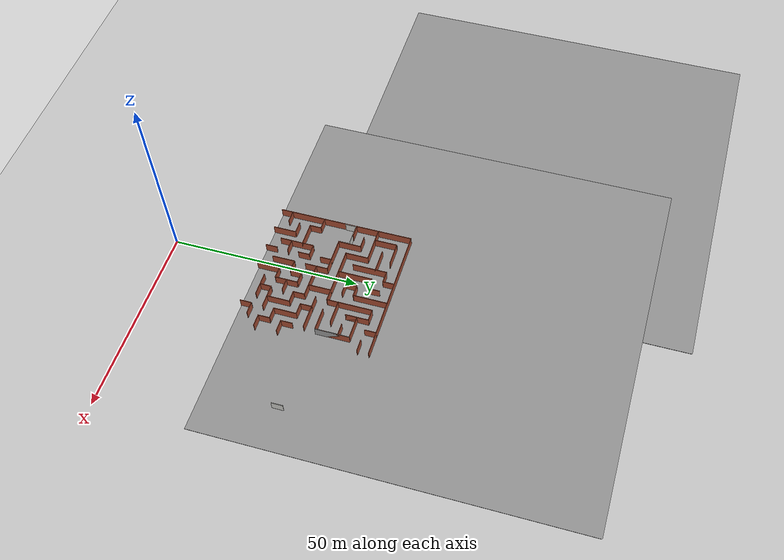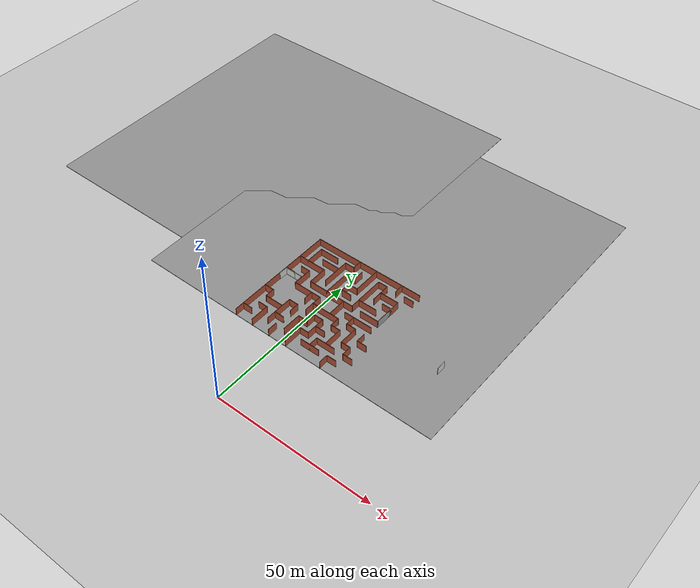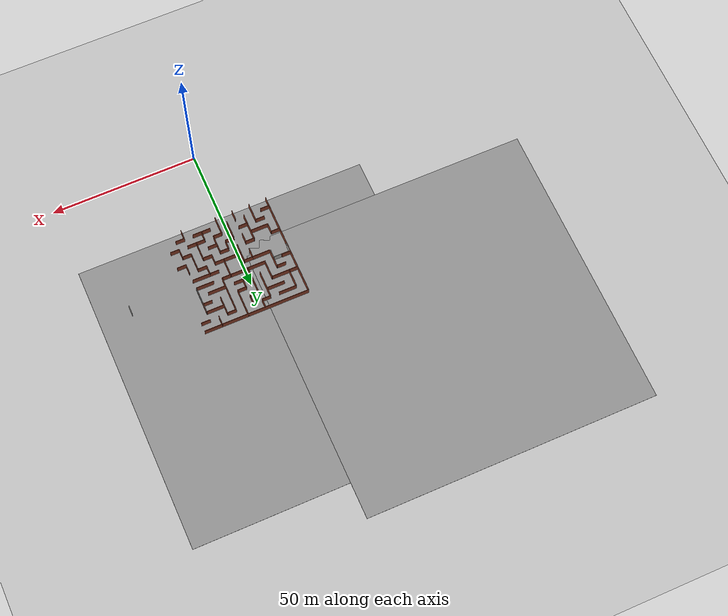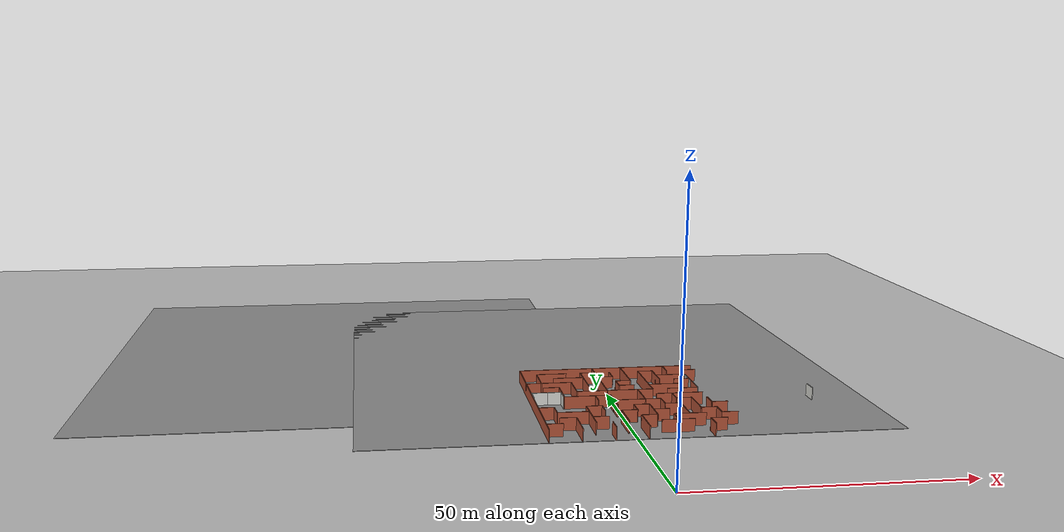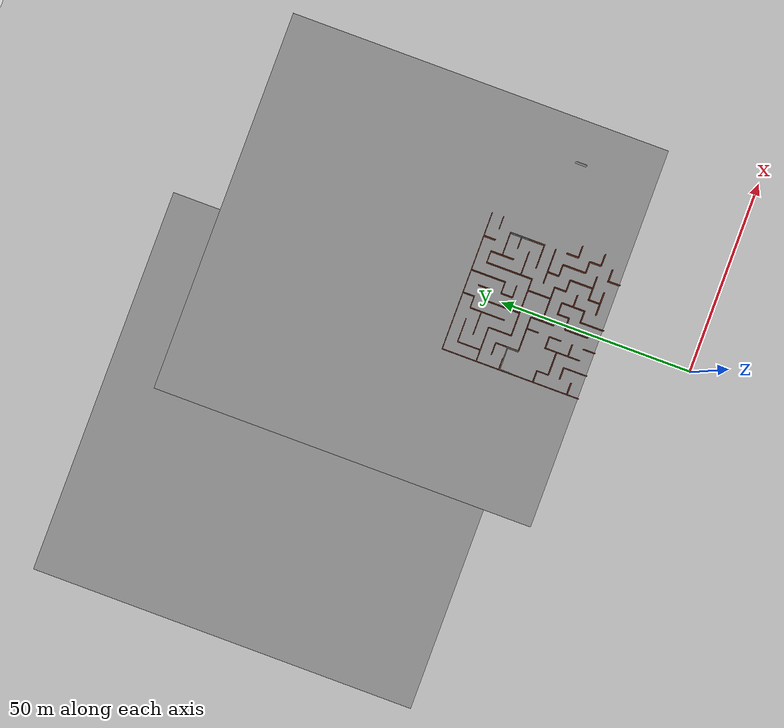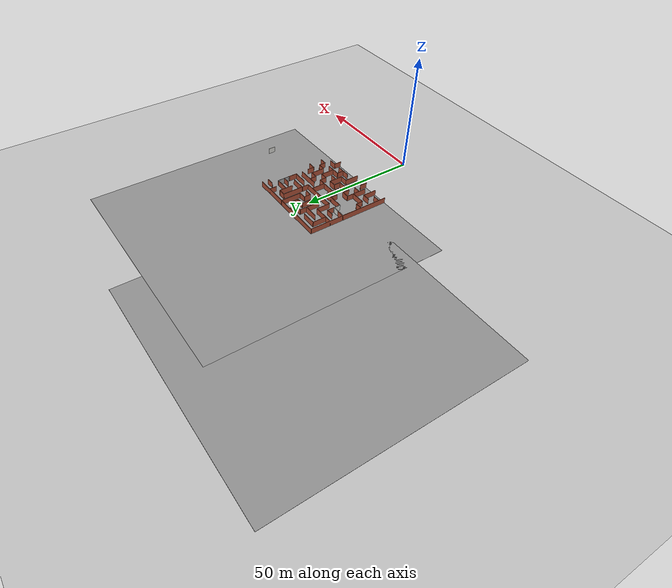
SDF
<sdf version="1.6">
 <world name="default">
  <model name="ground_plane">
   <static>1</static>
   <link name="link">
    <collision name="collision">
     <geometry><plane><normal>0 0 1</normal><size>100 100</size></plane></geometry>
     <surface><friction><ode><mu>100</mu><mu2>50</mu2></ode></friction></surface>
    </collision>
    <visual name="visual">
     <cast_shadows>0</cast_shadows>
     <geometry><plane><normal>0 0 1</normal><size>100 100</size></plane></geometry>
     <material>
      <script><uri>file://media/materials/scripts/gazebo.material</uri><name>Gazebo/Grey</name></script>
     </material>
    </visual>
   </link>
  </model>
  <model name="ground_plane_0">
   <static>1</static>
   <link name="link">
    <collision name="collision">
     <geometry><plane><normal>0 0 1</normal><size>100 100</size></plane></geometry>
     <surface><friction><ode><mu>100</mu><mu2>50</mu2></ode></friction></surface>
    </collision>
    <visual name="visual">
     <cast_shadows>0</cast_shadows>
     <geometry><plane><normal>0 0 1</normal><size>100 100</size></plane></geometry>
     <material>
      <script><uri>file://media/materials/scripts/gazebo.material</uri><name>Gazebo/Grey</name></script>
     </material>
    </visual>
   </link>
   <pose>0 74 0 0 -0 0</pose>
  </model>
  <model name="ground_plane_4">
   <static>1</static>
   <link name="link">
    <collision name="collision">
     <geometry><plane><normal>0 0 1</normal><size>100 100</size></plane></geometry>
     <surface><friction><ode><mu>100</mu><mu2>50</mu2></ode></friction></surface>
    </collision>
    <visual name="visual">
     <cast_shadows>0</cast_shadows>
     <geometry><plane><normal>0 0 1</normal><size>100 100</size></plane></geometry>
     <material>
      <script><uri>file://media/materials/scripts/gazebo.material</uri><name>Gazebo/Grey</name></script>
     </material>
    </visual>
   </link>
   <pose>-52.5239 86.437 0 0 -0 0</pose>
  </model>
  <model name="maze_final_2_0_clone">
   <pose>2 42 0 0 -0 1.57079</pose>
   <link name="Wall_10">
    <collision name="Wall_10_Collision">
     <geometry><box><size>3.15 0.15 2.5</size></box></geometry>
     <pose>0 0 1.25 0 -0 0</pose>
    </collision>
    <visual name="Wall_10_Visual">
     <pose>0 0 1.25 0 -0 0</pose>
     <geometry><box><size>3.15 0.15 2.5</size></box></geometry>
     <material>
      <script><uri>file://media/materials/scripts/gazebo.material</uri><name>Gazebo/Bricks</name></script>
      <ambient>1 1 1 1</ambient>
     </material>
    </visual>
    <pose>-16.5 -12 0 0 -0 0</pose>
   </link>
   <link name="Wall_102">
    <collision name="Wall_102_Collision">
     <geometry><box><size>9.15 0.15 2.5</size></box></geometry>
     <pose>0 0 1.25 0 -0 0</pose>
    </collision>
    <visual name="Wall_102_Visual">
     <pose>0 0 1.25 0 -0 0</pose>
     <geometry><box><size>9.15 0.15 2.5</size></box></geometry>
     <material>
      <script><uri>file://media/materials/scripts/gazebo.material</uri><name>Gazebo/Bricks</name></script>
      <ambient>1 1 1 1</ambient>
     </material>
    </visual>
    <pose>-0.0065 7.5 0 0 0 -1.57224</pose>
   </link>
   <link name="Wall_103">
    <collision name="Wall_103_Collision">
     <geometry><box><size>6.137 0.15 2.5</size></box></geometry>
     <pose>0 0 1.25 0 -0 0</pose>
    </collision>
    <visual name="Wall_103_Visual">
     <pose>0 0 1.25 0 -0 0</pose>
     <geometry><box><size>6.137 0.15 2.5</size></box></geometry>
     <material>
      <script><uri>file://media/materials/scripts/gazebo.material</uri><name>Gazebo/Bricks</name></script>
      <ambient>1 1 1 1</ambient>
     </material>
    </visual>
    <pose>-3.0065 3 0 0 -0 3.14159</pose>
   </link>
   <link name="Wall_105">
    <collision name="Wall_105_Collision">
     <geometry><box><size>3.15 0.15 2.5</size></box></geometry>
     <pose>0 0 1.25 0 -0 0</pose>
    </collision>
    <visual name="Wall_105_Visual">
     <pose>0 0 1.25 0 -0 0</pose>
     <geometry><box><size>3.15 0.15 2.5</size></box></geometry>
     <material>
      <script><uri>file://media/materials/scripts/gazebo.material</uri><name>Gazebo/Bricks</name></script>
      <ambient>1 1 1 1</ambient>
     </material>
    </visual>
    <pose>-1.5 6 0 0 -0 3.14159</pose>
   </link>
   <link name="Wall_108">
    <collision name="Wall_108_Collision">
     <geometry><box><size>6.15 0.15 2.5</size></box></geometry>
     <pose>0 0 1.25 0 -0 0</pose>
    </collision>
    <visual name="Wall_108_Visual">
     <pose>0 0 1.25 0 -0 0</pose>
     <geometry><box><size>6.15 0.15 2.5</size></box></geometry>
     <material>
      <script><uri>file://media/materials/scripts/gazebo.material</uri><name>Gazebo/Bricks</name></script>
      <ambient>1 1 1 1</ambient>
     </material>
    </visual>
    <pose>1e-06 -3 0 0 -0 3.14159</pose>
   </link>
   <link name="Wall_110">
    <collision name="Wall_110_Collision">
     <geometry><box><size>9.15 0.15 2.5</size></box></geometry>
     <pose>0 0 1.25 0 -0 0</pose>
    </collision>
    <visual name="Wall_110_Visual">
     <pose>0 0 1.25 0 -0 0</pose>
     <geometry><box><size>9.15 0.15 2.5</size></box></geometry>
     <material>
      <script><uri>file://media/materials/scripts/gazebo.material</uri><name>Gazebo/Bricks</name></script>
      <ambient>1 1 1 1</ambient>
     </material>
    </visual>
    <pose>-3 -1.5 0 0 -0 1.5708</pose>
   </link>
   <link name="Wall_112">
    <collision name="Wall_112_Collision">
     <geometry><box><size>3.15 0.15 2.5</size></box></geometry>
     <pose>0 0 1.25 0 -0 0</pose>
    </collision>
    <visual name="Wall_112_Visual">
     <pose>0 0 1.25 0 -0 0</pose>
     <geometry><box><size>3.15 0.15 2.5</size></box></geometry>
     <material>
      <script><uri>file://media/materials/scripts/gazebo.material</uri><name>Gazebo/Bricks</name></script>
      <ambient>1 1 1 1</ambient>
     </material>
    </visual>
    <pose>-4.5 -6 0 0 -0 3.14159</pose>
   </link>
   <link name="Wall_113">
    <collision name="Wall_113_Collision">
     <geometry><box><size>3.15 0.15 2.5</size></box></geometry>
     <pose>0 0 1.25 0 -0 0</pose>
    </collision>
    <visual name="Wall_113_Visual">
     <pose>0 0 1.25 0 -0 0</pose>
     <geometry><box><size>3.15 0.15 2.5</size></box></geometry>
     <material>
      <script><uri>file://media/materials/scripts/gazebo.material</uri><name>Gazebo/Bricks</name></script>
      <ambient>1 1 1 1</ambient>
     </material>
    </visual>
    <pose>-6 -7.5 0 0 0 -1.5708</pose>
   </link>
   <link name="Wall_114">
    <collision name="Wall_114_Collision">
     <geometry><box><size>6.15 0.15 2.5</size></box></geometry>
     <pose>0 0 1.25 0 -0 0</pose>
    </collision>
    <visual name="Wall_114_Visual">
     <pose>0 0 1.25 0 -0 0</pose>
     <geometry><box><size>6.15 0.15 2.5</size></box></geometry>
     <material>
      <script><uri>file://media/materials/scripts/gazebo.material</uri><name>Gazebo/Bricks</name></script>
      <ambient>1 1 1 1</ambient>
     </material>
    </visual>
    <pose>-9 -9 0 0 -0 3.14159</pose>
   </link>
   <link name="Wall_116">
    <collision name="Wall_116_Collision">
     <geometry><box><size>6.15 0.15 2.5</size></box></geometry>
     <pose>0 0 1.25 0 -0 0</pose>
    </collision>
    <visual name="Wall_116_Visual">
     <pose>0 0 1.25 0 -0 0</pose>
     <geometry><box><size>6.15 0.15 2.5</size></box></geometry>
     <material>
      <script><uri>file://media/materials/scripts/gazebo.material</uri><name>Gazebo/Bricks</name></script>
      <ambient>1 1 1 1</ambient>
     </material>
    </visual>
    <pose>-12 -9 0 0 -0 1.5708</pose>
   </link>
   <link name="Wall_117">
    <collision name="Wall_117_Collision">
     <geometry><box><size>3.15 0.15 2.5</size></box></geometry>
     <pose>0 0 1.25 0 -0 0</pose>
    </collision>
    <visual name="Wall_117_Visual">
     <pose>0 0 1.25 0 -0 0</pose>
     <geometry><box><size>3.15 0.15 2.5</size></box></geometry>
     <material>
      <script><uri>file://media/materials/scripts/gazebo.material</uri><name>Gazebo/Bricks</name></script>
      <ambient>1 1 1 1</ambient>
     </material>
    </visual>
    <pose>-13.5 -6 0 0 -0 3.14159</pose>
   </link>
   <link name="Wall_119">
    <collision name="Wall_119_Collision">
     <geometry><box><size>6.15 0.15 2.5</size></box></geometry>
     <pose>0 0 1.25 0 -0 0</pose>
    </collision>
    <visual name="Wall_119_Visual">
     <pose>0 0 1.25 0 -0 0</pose>
     <geometry><box><size>6.15 0.15 2.5</size></box></geometry>
     <material>
      <script><uri>file://media/materials/scripts/gazebo.material</uri><name>Gazebo/Bricks</name></script>
      <ambient>1 1 1 1</ambient>
     </material>
    </visual>
    <pose>-15 -6 0 0 0 -1.5708</pose>
   </link>
   <link name="Wall_12">
    <collision name="Wall_12_Collision">
     <geometry><box><size>6.15 0.15 2.5</size></box></geometry>
     <pose>0 0 1.25 0 -0 0</pose>
    </collision>
    <visual name="Wall_12_Visual">
     <pose>0 0 1.25 0 -0 0</pose>
     <geometry><box><size>6.15 0.15 2.5</size></box></geometry>
     <material>
      <script><uri>file://media/materials/scripts/gazebo.material</uri><name>Gazebo/Bricks</name></script>
      <ambient>1 1 1 1</ambient>
     </material>
    </visual>
    <pose>-15 -1e-06 0 0 -0 0</pose>
   </link>
   <link name="Wall_121">
    <collision name="Wall_121_Collision">
     <geometry><box><size>3.13703 0.15 2.5</size></box></geometry>
     <pose>0 0 1.25 0 -0 0</pose>
    </collision>
    <visual name="Wall_121_Visual">
     <pose>0 0 1.25 0 -0 0</pose>
     <geometry><box><size>3.13703 0.15 2.5</size></box></geometry>
     <material>
      <script><uri>file://media/materials/scripts/gazebo.material</uri><name>Gazebo/Bricks</name></script>
      <ambient>1 1 1 1</ambient>
     </material>
    </visual>
    <pose>-12.0065 -1.4935 0 0 0 -1.57515</pose>
   </link>
   <link name="Wall_122">
    <collision name="Wall_122_Collision">
     <geometry><box><size>6.16301 0.15 2.5</size></box></geometry>
     <pose>0 0 1.25 0 -0 0</pose>
    </collision>
    <visual name="Wall_122_Visual">
     <pose>0 0 1.25 0 -0 0</pose>
     <geometry><box><size>6.16301 0.15 2.5</size></box></geometry>
     <material>
      <script><uri>file://media/materials/scripts/gazebo.material</uri><name>Gazebo/Bricks</name></script>
      <ambient>1 1 1 1</ambient>
     </material>
    </visual>
    <pose>-9.0065 -2.9935 0 0 0 -0.002162</pose>
   </link>
   <link name="Wall_123">
    <collision name="Wall_123_Collision">
     <geometry><box><size>3.15 0.15 2.5</size></box></geometry>
     <pose>0 0 1.25 0 -0 0</pose>
    </collision>
    <visual name="Wall_123_Visual">
     <pose>0 0 1.25 0 -0 0</pose>
     <geometry><box><size>3.15 0.15 2.5</size></box></geometry>
     <material>
      <script><uri>file://media/materials/scripts/gazebo.material</uri><name>Gazebo/Bricks</name></script>
      <ambient>1 1 1 1</ambient>
     </material>
    </visual>
    <pose>-6 -1.5 0 0 -0 1.5708</pose>
   </link>
   <link name="Wall_124">
    <collision name="Wall_124_Collision">
     <geometry><box><size>3.15 0.15 2.5</size></box></geometry>
     <pose>0 0 1.25 0 -0 0</pose>
    </collision>
    <visual name="Wall_124_Visual">
     <pose>0 0 1.25 0 -0 0</pose>
     <geometry><box><size>3.15 0.15 2.5</size></box></geometry>
     <material>
      <script><uri>file://media/materials/scripts/gazebo.material</uri><name>Gazebo/Bricks</name></script>
      <ambient>1 1 1 1</ambient>
     </material>
    </visual>
    <pose>-7.5 -1e-06 0 0 -0 3.14159</pose>
   </link>
   <link name="Wall_125">
    <collision name="Wall_125_Collision">
     <geometry><box><size>3.15 0.15 2.5</size></box></geometry>
     <pose>0 0 1.25 0 -0 0</pose>
    </collision>
    <visual name="Wall_125_Visual">
     <pose>0 0 1.25 0 -0 0</pose>
     <geometry><box><size>3.15 0.15 2.5</size></box></geometry>
     <material>
      <script><uri>file://media/materials/scripts/gazebo.material</uri><name>Gazebo/Bricks</name></script>
      <ambient>1 1 1 1</ambient>
     </material>
    </visual>
    <pose>-9 1.5 0 0 -0 1.5708</pose>
   </link>
   <link name="Wall_127">
    <collision name="Wall_127_Collision">
     <geometry><box><size>6.15 0.15 2.5</size></box></geometry>
     <pose>0 0 1.25 0 -0 0</pose>
    </collision>
    <visual name="Wall_127_Visual">
     <pose>0 0 1.25 0 -0 0</pose>
     <geometry><box><size>6.15 0.15 2.5</size></box></geometry>
     <material>
      <script><uri>file://media/materials/scripts/gazebo.material</uri><name>Gazebo/Bricks</name></script>
      <ambient>1 1 1 1</ambient>
     </material>
    </visual>
    <pose>-12 3 0 0 -0 3.14159</pose>
   </link>
   <link name="Wall_129">
    <collision name="Wall_129_Collision">
     <geometry><box><size>3.15 0.15 2.5</size></box></geometry>
     <pose>0 0 1.25 0 -0 0</pose>
    </collision>
    <visual name="Wall_129_Visual">
     <pose>0 0 1.25 0 -0 0</pose>
     <geometry><box><size>3.15 0.15 2.5</size></box></geometry>
     <material>
      <script><uri>file://media/materials/scripts/gazebo.material</uri><name>Gazebo/Bricks</name></script>
      <ambient>1 1 1 1</ambient>
     </material>
    </visual>
    <pose>-9 -4.5 0 0 0 -1.5708</pose>
   </link>
   <link name="Wall_131">
    <collision name="Wall_131_Collision">
     <geometry><box><size>3.15 0.15 2.5</size></box></geometry>
     <pose>0 0 1.25 0 -0 0</pose>
    </collision>
    <visual name="Wall_131_Visual">
     <pose>0 0 1.25 0 -0 0</pose>
     <geometry><box><size>3.15 0.15 2.5</size></box></geometry>
     <material>
      <script><uri>file://media/materials/scripts/gazebo.material</uri><name>Gazebo/Bricks</name></script>
      <ambient>1 1 1 1</ambient>
     </material>
    </visual>
    <pose>-6 16.5 0 0 0 -1.5708</pose>
   </link>
   <link name="Wall_132">
    <collision name="Wall_132_Collision">
     <geometry><box><size>3.15 0.15 2.5</size></box></geometry>
     <pose>0 0 1.25 0 -0 0</pose>
    </collision>
    <visual name="Wall_132_Visual">
     <pose>0 0 1.25 0 -0 0</pose>
     <geometry><box><size>3.15 0.15 2.5</size></box></geometry>
     <material>
      <script><uri>file://media/materials/scripts/gazebo.material</uri><name>Gazebo/Bricks</name></script>
      <ambient>1 1 1 1</ambient>
     </material>
    </visual>
    <pose>-7.5 15 0 0 -0 3.14159</pose>
   </link>
   <link name="Wall_133">
    <collision name="Wall_133_Collision">
     <geometry><box><size>6.15 0.15 2.5</size></box></geometry>
     <pose>0 0 1.25 0 -0 0</pose>
    </collision>
    <visual name="Wall_133_Visual">
     <pose>0 0 1.25 0 -0 0</pose>
     <geometry><box><size>6.15 0.15 2.5</size></box></geometry>
     <material>
      <script><uri>file://media/materials/scripts/gazebo.material</uri><name>Gazebo/Bricks</name></script>
      <ambient>1 1 1 1</ambient>
     </material>
    </visual>
    <pose>-9 12 0 0 0 -1.5708</pose>
   </link>
   <link name="Wall_135">
    <collision name="Wall_135_Collision">
     <geometry><box><size>3.15 0.15 2.5</size></box></geometry>
     <pose>0 0 1.25 0 -0 0</pose>
    </collision>
    <visual name="Wall_135_Visual">
     <pose>0 0 1.25 0 -0 0</pose>
     <geometry><box><size>3.15 0.15 2.5</size></box></geometry>
     <material>
      <script><uri>file://media/materials/scripts/gazebo.material</uri><name>Gazebo/Bricks</name></script>
      <ambient>1 1 1 1</ambient>
     </material>
    </visual>
    <pose>-7.5 6 0 0 -0 0</pose>
   </link>
   <link name="Wall_136">
    <collision name="Wall_136_Collision">
     <geometry><box><size>3.15 0.15 2.5</size></box></geometry>
     <pose>0 0 1.25 0 -0 0</pose>
    </collision>
    <visual name="Wall_136_Visual">
     <pose>0 0 1.25 0 -0 0</pose>
     <geometry><box><size>3.15 0.15 2.5</size></box></geometry>
     <material>
      <script><uri>file://media/materials/scripts/gazebo.material</uri><name>Gazebo/Bricks</name></script>
      <ambient>1 1 1 1</ambient>
     </material>
    </visual>
    <pose>-6 7.5 0 0 -0 1.5708</pose>
   </link>
   <link name="Wall_137">
    <collision name="Wall_137_Collision">
     <geometry><box><size>9.15 0.15 2.5</size></box></geometry>
     <pose>0 0 1.25 0 -0 0</pose>
    </collision>
    <visual name="Wall_137_Visual">
     <pose>0 0 1.25 0 -0 0</pose>
     <geometry><box><size>9.15 0.15 2.5</size></box></geometry>
     <material>
      <script><uri>file://media/materials/scripts/gazebo.material</uri><name>Gazebo/Bricks</name></script>
      <ambient>1 1 1 1</ambient>
     </material>
    </visual>
    <pose>-10.5 9 0 0 -0 3.14159</pose>
   </link>
   <link name="Wall_139">
    <collision name="Wall_139_Collision">
     <geometry><box><size>3.15 0.15 2.5</size></box></geometry>
     <pose>0 0 1.25 0 -0 0</pose>
    </collision>
    <visual name="Wall_139_Visual">
     <pose>0 0 1.25 0 -0 0</pose>
     <geometry><box><size>3.15 0.15 2.5</size></box></geometry>
     <material>
      <script><uri>file://media/materials/scripts/gazebo.material</uri><name>Gazebo/Bricks</name></script>
      <ambient>1 1 1 1</ambient>
     </material>
    </visual>
    <pose>-12 7.5 0 0 0 -1.5708</pose>
   </link>
   <link name="Wall_14">
    <collision name="Wall_14_Collision">
     <geometry><box><size>3.15 0.15 2.5</size></box></geometry>
     <pose>0 0 1.25 0 -0 0</pose>
    </collision>
    <visual name="Wall_14_Visual">
     <pose>0 0 1.25 0 -0 0</pose>
     <geometry><box><size>3.15 0.15 2.5</size></box></geometry>
     <material>
      <script><uri>file://media/materials/scripts/gazebo.material</uri><name>Gazebo/Bricks</name></script>
      <ambient>1 1 1 1</ambient>
     </material>
    </visual>
    <pose>-16.5 6 0 0 -0 0</pose>
   </link>
   <link name="Wall_141">
    <collision name="Wall_141_Collision">
     <geometry><box><size>3.15 0.15 2.5</size></box></geometry>
     <pose>0 0 1.25 0 -0 0</pose>
    </collision>
    <visual name="Wall_141_Visual">
     <pose>0 0 1.25 0 -0 0</pose>
     <geometry><box><size>3.15 0.15 2.5</size></box></geometry>
     <material>
      <script><uri>file://media/materials/scripts/gazebo.material</uri><name>Gazebo/Bricks</name></script>
      <ambient>1 1 1 1</ambient>
     </material>
    </visual>
    <pose>-15 16.5 0 0 -0 1.5708</pose>
   </link>
   <link name="Wall_143">
    <collision name="Wall_143_Collision">
     <geometry><box><size>3.15 0.15 2.5</size></box></geometry>
     <pose>0 0 1.25 0 -0 0</pose>
    </collision>
    <visual name="Wall_143_Visual">
     <pose>0 0 1.25 0 -0 0</pose>
     <geometry><box><size>3.15 0.15 2.5</size></box></geometry>
     <material>
      <script><uri>file://media/materials/scripts/gazebo.material</uri><name>Gazebo/Bricks</name></script>
      <ambient>1 1 1 1</ambient>
     </material>
    </visual>
    <pose>-12 13.5 0 0 -0 1.5708</pose>
   </link>
   <link name="Wall_16">
    <collision name="Wall_16_Collision">
     <geometry><box><size>6.15 0.15 2.5</size></box></geometry>
     <pose>0 0 1.25 0 -0 0</pose>
    </collision>
    <visual name="Wall_16_Visual">
     <pose>0 0 1.25 0 -0 0</pose>
     <geometry><box><size>6.15 0.15 2.5</size></box></geometry>
     <material>
      <script><uri>file://media/materials/scripts/gazebo.material</uri><name>Gazebo/Bricks</name></script>
      <ambient>1 1 1 1</ambient>
     </material>
    </visual>
    <pose>-15 12 0 0 -0 0</pose>
   </link>
   <link name="Wall_18">
    <collision name="Wall_18_Collision">
     <geometry><box><size>3.15 0.15 2.5</size></box></geometry>
     <pose>0 0 1.25 0 -0 0</pose>
    </collision>
    <visual name="Wall_18_Visual">
     <pose>0 0 1.25 0 -0 0</pose>
     <geometry><box><size>3.15 0.15 2.5</size></box></geometry>
     <material>
      <script><uri>file://media/materials/scripts/gazebo.material</uri><name>Gazebo/Bricks</name></script>
      <ambient>1 1 1 1</ambient>
     </material>
    </visual>
    <pose>-12 -16.5 0 0 -0 1.5708</pose>
   </link>
   <link name="Wall_20">
    <collision name="Wall_20_Collision">
     <geometry><box><size>3.15 0.15 2.5</size></box></geometry>
     <pose>0 0 1.25 0 -0 0</pose>
    </collision>
    <visual name="Wall_20_Visual">
     <pose>0 0 1.25 0 -0 0</pose>
     <geometry><box><size>3.15 0.15 2.5</size></box></geometry>
     <material>
      <script><uri>file://media/materials/scripts/gazebo.material</uri><name>Gazebo/Bricks</name></script>
      <ambient>1 1 1 1</ambient>
     </material>
    </visual>
    <pose>-10.5 -15 0 0 -0 0</pose>
   </link>
   <link name="Wall_22">
    <collision name="Wall_22_Collision">
     <geometry><box><size>6.15 0.15 2.5</size></box></geometry>
     <pose>0 0 1.25 0 -0 0</pose>
    </collision>
    <visual name="Wall_22_Visual">
     <pose>0 0 1.25 0 -0 0</pose>
     <geometry><box><size>6.15 0.15 2.5</size></box></geometry>
     <material>
      <script><uri>file://media/materials/scripts/gazebo.material</uri><name>Gazebo/Bricks</name></script>
      <ambient>1 1 1 1</ambient>
     </material>
    </visual>
    <pose>-6 -12 0 0 -0 0</pose>
   </link>
   <link name="Wall_24">
    <collision name="Wall_24_Collision">
     <geometry><box><size>3.15 0.15 2.5</size></box></geometry>
     <pose>0 0 1.25 0 -0 0</pose>
    </collision>
    <visual name="Wall_24_Visual">
     <pose>0 0 1.25 0 -0 0</pose>
     <geometry><box><size>3.15 0.15 2.5</size></box></geometry>
     <material>
      <script><uri>file://media/materials/scripts/gazebo.material</uri><name>Gazebo/Bricks</name></script>
      <ambient>1 1 1 1</ambient>
     </material>
    </visual>
    <pose>-9 -13.5 0 0 0 -1.5708</pose>
   </link>
   <link name="Wall_26">
    <collision name="Wall_26_Collision">
     <geometry><box><size>3.15 0.15 2.5</size></box></geometry>
     <pose>0 0 1.25 0 -0 0</pose>
    </collision>
    <visual name="Wall_26_Visual">
     <pose>0 0 1.25 0 -0 0</pose>
     <geometry><box><size>3.15 0.15 2.5</size></box></geometry>
     <material>
      <script><uri>file://media/materials/scripts/gazebo.material</uri><name>Gazebo/Bricks</name></script>
      <ambient>1 1 1 1</ambient>
     </material>
    </visual>
    <pose>-6 -16.5 0 0 -0 1.5708</pose>
   </link>
   <link name="Wall_28">
    <collision name="Wall_28_Collision">
     <geometry><box><size>3.15 0.15 2.5</size></box></geometry>
     <pose>0 0 1.25 0 -0 0</pose>
    </collision>
    <visual name="Wall_28_Visual">
     <pose>0 0 1.25 0 -0 0</pose>
     <geometry><box><size>3.15 0.15 2.5</size></box></geometry>
     <material>
      <script><uri>file://media/materials/scripts/gazebo.material</uri><name>Gazebo/Bricks</name></script>
      <ambient>1 1 1 1</ambient>
     </material>
    </visual>
    <pose>-4.5 -15 0 0 -0 0</pose>
   </link>
   <link name="Wall_32">
    <collision name="Wall_32_Collision">
     <geometry><box><size>9.15 0.15 2.5</size></box></geometry>
     <pose>0 0 1.25 0 -0 0</pose>
    </collision>
    <visual name="Wall_32_Visual">
     <pose>0 0 1.25 0 -0 0</pose>
     <geometry><box><size>9.15 0.15 2.5</size></box></geometry>
     <material>
      <script><uri>file://media/materials/scripts/gazebo.material</uri><name>Gazebo/Bricks</name></script>
      <ambient>1 1 1 1</ambient>
     </material>
    </visual>
    <pose>1e-06 -10.5 0 0 -0 1.5708</pose>
   </link>
   <link name="Wall_34">
    <collision name="Wall_34_Collision">
     <geometry><box><size>3.15 0.15 2.5</size></box></geometry>
     <pose>0 0 1.25 0 -0 0</pose>
    </collision>
    <visual name="Wall_34_Visual">
     <pose>0 0 1.25 0 -0 0</pose>
     <geometry><box><size>3.15 0.15 2.5</size></box></geometry>
     <material>
      <script><uri>file://media/materials/scripts/gazebo.material</uri><name>Gazebo/Bricks</name></script>
      <ambient>1 1 1 1</ambient>
     </material>
    </visual>
    <pose>-1.5 -9 0 0 -0 3.14159</pose>
   </link>
   <link name="Wall_36">
    <collision name="Wall_36_Collision">
     <geometry><box><size>3.15 0.15 2.5</size></box></geometry>
     <pose>0 0 1.25 0 -0 0</pose>
    </collision>
    <visual name="Wall_36_Visual">
     <pose>0 0 1.25 0 -0 0</pose>
     <geometry><box><size>3.15 0.15 2.5</size></box></geometry>
     <material>
      <script><uri>file://media/materials/scripts/gazebo.material</uri><name>Gazebo/Bricks</name></script>
      <ambient>1 1 1 1</ambient>
     </material>
    </visual>
    <pose>-3 -10.5 0 0 -0 1.5708</pose>
   </link>
   <link name="Wall_4">
    <collision name="Wall_4_Collision">
     <geometry><box><size>36.15 0.15 2.5</size></box></geometry>
     <pose>0 0 1.25 0 -0 0</pose>
    </collision>
    <visual name="Wall_4_Visual">
     <pose>0 0 1.25 0 -0 0</pose>
     <geometry><box><size>36.15 0.15 2.5</size></box></geometry>
     <material>
      <script><uri>file://media/materials/scripts/gazebo.material</uri><name>Gazebo/Bricks</name></script>
      <ambient>1 1 1 1</ambient>
     </material>
    </visual>
    <pose>18 -1e-06 0 0 0 -1.5708</pose>
   </link>
   <link name="Wall_40">
    <collision name="Wall_40_Collision">
     <geometry><box><size>9.15 0.15 2.5</size></box></geometry>
     <pose>0 0 1.25 0 -0 0</pose>
    </collision>
    <visual name="Wall_40_Visual">
     <pose>0 0 1.25 0 -0 0</pose>
     <geometry><box><size>9.15 0.15 2.5</size></box></geometry>
     <material>
      <script><uri>file://media/materials/scripts/gazebo.material</uri><name>Gazebo/Grey</name></script>
      <ambient>1 1 1 1</ambient>
     </material>
    </visual>
    <pose>7.5 -15 0 0 -0 0</pose>
   </link>
   <link name="Wall_43">
    <collision name="Wall_43_Collision">
     <geometry><box><size>9.15 0.15 2.5</size></box></geometry>
     <pose>0 0 1.25 0 -0 0</pose>
    </collision>
    <visual name="Wall_43_Visual">
     <pose>0 0 1.25 0 -0 0</pose>
     <geometry><box><size>9.15 0.15 2.5</size></box></geometry>
     <material>
      <script><uri>file://media/materials/scripts/gazebo.material</uri><name>Gazebo/Bricks</name></script>
      <ambient>1 1 1 1</ambient>
     </material>
    </visual>
    <pose>9 13.5 0 0 0 -1.5708</pose>
   </link>
   <link name="Wall_45">
    <collision name="Wall_45_Collision">
     <geometry><box><size>6.15 0.15 2.5</size></box></geometry>
     <pose>0 0 1.25 0 -0 0</pose>
    </collision>
    <visual name="Wall_45_Visual">
     <pose>0 0 1.25 0 -0 0</pose>
     <geometry><box><size>6.15 0.15 2.5</size></box></geometry>
     <material>
      <script><uri>file://media/materials/scripts/gazebo.material</uri><name>Gazebo/Bricks</name></script>
      <ambient>1 1 1 1</ambient>
     </material>
    </visual>
    <pose>6 9 0 0 -0 3.14159</pose>
   </link>
   <link name="Wall_47">
    <collision name="Wall_47_Collision">
     <geometry><box><size>15.15 0.15 2.5</size></box></geometry>
     <pose>0 0 1.25 0 -0 0</pose>
    </collision>
    <visual name="Wall_47_Visual">
     <pose>0 0 1.25 0 -0 0</pose>
     <geometry><box><size>15.15 0.15 2.5</size></box></geometry>
     <material>
      <script><uri>file://media/materials/scripts/gazebo.material</uri><name>Gazebo/Bricks</name></script>
      <ambient>1 1 1 1</ambient>
     </material>
    </visual>
    <pose>3 1.5 0 0 0 -1.5708</pose>
   </link>
   <link name="Wall_49">
    <collision name="Wall_49_Collision">
     <geometry><box><size>12.15 0.15 2.5</size></box></geometry>
     <pose>0 0 1.25 0 -0 0</pose>
    </collision>
    <visual name="Wall_49_Visual">
     <pose>0 0 1.25 0 -0 0</pose>
     <geometry><box><size>12.15 0.15 2.5</size></box></geometry>
     <material>
      <script><uri>file://media/materials/scripts/gazebo.material</uri><name>Gazebo/Bricks</name></script>
      <ambient>1 1 1 1</ambient>
     </material>
    </visual>
    <pose>9 -6 0 0 -0 0</pose>
   </link>
   <link name="Wall_51">
    <collision name="Wall_51_Collision">
     <geometry><box><size>3.15 0.15 2.5</size></box></geometry>
     <pose>0 0 1.25 0 -0 0</pose>
    </collision>
    <visual name="Wall_51_Visual">
     <pose>0 0 1.25 0 -0 0</pose>
     <geometry><box><size>3.15 0.15 2.5</size></box></geometry>
     <material>
      <script><uri>file://media/materials/scripts/gazebo.material</uri><name>Gazebo/Bricks</name></script>
      <ambient>1 1 1 1</ambient>
     </material>
    </visual>
    <pose>15 -7.5 0 0 0 -1.5708</pose>
   </link>
   <link name="Wall_53">
    <collision name="Wall_53_Collision">
     <geometry><box><size>6.15 0.15 2.5</size></box></geometry>
     <pose>0 0 1.25 0 -0 0</pose>
    </collision>
    <visual name="Wall_53_Visual">
     <pose>0 0 1.25 0 -0 0</pose>
     <geometry><box><size>6.15 0.15 2.5</size></box></geometry>
     <material>
      <script><uri>file://media/materials/scripts/gazebo.material</uri><name>Gazebo/Bricks</name></script>
      <ambient>1 1 1 1</ambient>
     </material>
    </visual>
    <pose>12 -9 0 0 -0 3.14159</pose>
   </link>
   <link name="Wall_55">
    <collision name="Wall_55_Collision">
     <geometry><box><size>6.15 0.15 2.5</size></box></geometry>
     <pose>0 0 1.25 0 -0 0</pose>
    </collision>
    <visual name="Wall_55_Visual">
     <pose>0 0 1.25 0 -0 0</pose>
     <geometry><box><size>6.15 0.15 2.5</size></box></geometry>
     <material>
      <script><uri>file://media/materials/scripts/gazebo.material</uri><name>Gazebo/Bricks</name></script>
      <ambient>1 1 1 1</ambient>
     </material>
    </visual>
    <pose>12 -12 0 0 0 -1.5708</pose>
   </link>
   <link name="Wall_57">
    <collision name="Wall_57_Collision">
     <geometry><box><size>9.15 0.15 2.5</size></box></geometry>
     <pose>0 0 1.25 0 -0 0</pose>
    </collision>
    <visual name="Wall_57_Visual">
     <pose>0 0 1.25 0 -0 0</pose>
     <geometry><box><size>9.15 0.15 2.5</size></box></geometry>
     <material>
      <script><uri>file://media/materials/scripts/gazebo.material</uri><name>Gazebo/Bricks</name></script>
      <ambient>1 1 1 1</ambient>
     </material>
    </visual>
    <pose>7.5 -15 0 0 -0 3.14159</pose>
   </link>
   <link name="Wall_59">
    <collision name="Wall_59_Collision">
     <geometry><box><size>3.15 0.15 2.5</size></box></geometry>
     <pose>0 0 1.25 0 -0 0</pose>
    </collision>
    <visual name="Wall_59_Visual">
     <pose>0 0 1.25 0 -0 0</pose>
     <geometry><box><size>3.15 0.15 2.5</size></box></geometry>
     <material>
      <script><uri>file://media/materials/scripts/gazebo.material</uri><name>Gazebo/Bricks</name></script>
      <ambient>1 1 1 1</ambient>
     </material>
    </visual>
    <pose>9 -13.5 0 0 -0 1.5708</pose>
   </link>
   <link name="Wall_6">
    <collision name="Wall_6_Collision">
     <geometry><box><size>36.15 0.15 2.5</size></box></geometry>
     <pose>0 0 1.25 0 -0 0</pose>
    </collision>
    <visual name="Wall_6_Visual">
     <pose>0 0 1.25 0 -0 0</pose>
     <geometry><box><size>36.15 0.15 2.5</size></box></geometry>
     <material>
      <script><uri>file://media/materials/scripts/gazebo.material</uri><name>Gazebo/Bricks</name></script>
      <ambient>1 1 1 1</ambient>
     </material>
    </visual>
    <pose>1e-06 18 0 0 -0 3.14159</pose>
   </link>
   <link name="Wall_62">
    <collision name="Wall_62_Collision">
     <geometry><box><size>3.15 0.15 2.5</size></box></geometry>
     <pose>0 0 1.25 0 -0 0</pose>
    </collision>
    <visual name="Wall_62_Visual">
     <pose>0 0 1.25 0 -0 0</pose>
     <geometry><box><size>3.15 0.15 2.5</size></box></geometry>
     <material>
      <script><uri>file://media/materials/scripts/gazebo.material</uri><name>Gazebo/Bricks</name></script>
      <ambient>1 1 1 1</ambient>
     </material>
    </visual>
    <pose>10.5 -9 0 0 -0 3.14159</pose>
   </link>
   <link name="Wall_64">
    <collision name="Wall_64_Collision">
     <geometry><box><size>6.15 0.15 2.5</size></box></geometry>
     <pose>0 0 1.25 0 -0 0</pose>
    </collision>
    <visual name="Wall_64_Visual">
     <pose>0 0 1.25 0 -0 0</pose>
     <geometry><box><size>6.15 0.15 2.5</size></box></geometry>
     <material>
      <script><uri>file://media/materials/scripts/gazebo.material</uri><name>Gazebo/Bricks</name></script>
      <ambient>1 1 1 1</ambient>
     </material>
    </visual>
    <pose>3 -12 0 0 -0 1.5708</pose>
   </link>
   <link name="Wall_66">
    <collision name="Wall_66_Collision">
     <geometry><box><size>6.15 0.15 2.5</size></box></geometry>
     <pose>0 0 1.25 0 -0 0</pose>
    </collision>
    <visual name="Wall_66_Visual">
     <pose>0 0 1.25 0 -0 0</pose>
     <geometry><box><size>6.15 0.15 2.5</size></box></geometry>
     <material>
      <script><uri>file://media/materials/scripts/gazebo.material</uri><name>Gazebo/Bricks</name></script>
      <ambient>1 1 1 1</ambient>
     </material>
    </visual>
    <pose>6 -9 0 0 -0 1.5708</pose>
   </link>
   <link name="Wall_68">
    <collision name="Wall_68_Collision">
     <geometry><box><size>3.15 0.15 2.5</size></box></geometry>
     <pose>0 0 1.25 0 -0 0</pose>
    </collision>
    <visual name="Wall_68_Visual">
     <pose>0 0 1.25 0 -0 0</pose>
     <geometry><box><size>3.15 0.15 2.5</size></box></geometry>
     <material>
      <script><uri>file://media/materials/scripts/gazebo.material</uri><name>Gazebo/Bricks</name></script>
      <ambient>1 1 1 1</ambient>
     </material>
    </visual>
    <pose>16.5 -12 0 0 -0 3.14159</pose>
   </link>
   <link name="Wall_70">
    <collision name="Wall_70_Collision">
     <geometry><box><size>3.15 0.15 2.5</size></box></geometry>
     <pose>0 0 1.25 0 -0 0</pose>
    </collision>
    <visual name="Wall_70_Visual">
     <pose>0 0 1.25 0 -0 0</pose>
     <geometry><box><size>3.15 0.15 2.5</size></box></geometry>
     <material>
      <script><uri>file://media/materials/scripts/gazebo.material</uri><name>Gazebo/Bricks</name></script>
      <ambient>1 1 1 1</ambient>
     </material>
    </visual>
    <pose>15 -16.5 0 0 -0 1.5708</pose>
   </link>
   <link name="Wall_72">
    <collision name="Wall_72_Collision">
     <geometry><box><size>9.15 0.15 2.5</size></box></geometry>
     <pose>0 0 1.25 0 -0 0</pose>
    </collision>
    <visual name="Wall_72_Visual">
     <pose>0 0 1.25 0 -0 0</pose>
     <geometry><box><size>9.15 0.15 2.5</size></box></geometry>
     <material>
      <script><uri>file://media/materials/scripts/gazebo.material</uri><name>Gazebo/Bricks</name></script>
      <ambient>1 1 1 1</ambient>
     </material>
    </visual>
    <pose>13.5 -3 0 0 -0 3.14159</pose>
   </link>
   <link name="Wall_74">
    <collision name="Wall_74_Collision">
     <geometry><box><size>3.15 0.15 2.5</size></box></geometry>
     <pose>0 0 1.25 0 -0 0</pose>
    </collision>
    <visual name="Wall_74_Visual">
     <pose>0 0 1.25 0 -0 0</pose>
     <geometry><box><size>3.15 0.15 2.5</size></box></geometry>
     <material>
      <script><uri>file://media/materials/scripts/gazebo.material</uri><name>Gazebo/Bricks</name></script>
      <ambient>1 1 1 1</ambient>
     </material>
    </visual>
    <pose>9 -1.5 0 0 -0 1.5708</pose>
   </link>
   <link name="Wall_76">
    <collision name="Wall_76_Collision">
     <geometry><box><size>3.15 0.15 2.5</size></box></geometry>
     <pose>0 0 1.25 0 -0 0</pose>
    </collision>
    <visual name="Wall_76_Visual">
     <pose>0 0 1.25 0 -0 0</pose>
     <geometry><box><size>3.15 0.15 2.5</size></box></geometry>
     <material>
      <script><uri>file://media/materials/scripts/gazebo.material</uri><name>Gazebo/Bricks</name></script>
      <ambient>1 1 1 1</ambient>
     </material>
    </visual>
    <pose>7.5 -1e-06 0 0 -0 3.14159</pose>
   </link>
   <link name="Wall_77">
    <collision name="Wall_77_Collision">
     <geometry><box><size>3.15 0.15 2.5</size></box></geometry>
     <pose>0 0 1.25 0 -0 0</pose>
    </collision>
    <visual name="Wall_77_Visual">
     <pose>0 0 1.25 0 -0 0</pose>
     <geometry><box><size>3.15 0.15 2.5</size></box></geometry>
     <material>
      <script><uri>file://media/materials/scripts/gazebo.material</uri><name>Gazebo/Bricks</name></script>
      <ambient>1 1 1 1</ambient>
     </material>
    </visual>
    <pose>6 -1.5 0 0 0 -1.5708</pose>
   </link>
   <link name="Wall_79">
    <collision name="Wall_79_Collision">
     <geometry><box><size>3.15 0.15 2.5</size></box></geometry>
     <pose>0 0 1.25 0 -0 0</pose>
    </collision>
    <visual name="Wall_79_Visual">
     <pose>0 0 1.25 0 -0 0</pose>
     <geometry><box><size>3.15 0.15 2.5</size></box></geometry>
     <material>
      <script><uri>file://media/materials/scripts/gazebo.material</uri><name>Gazebo/Bricks</name></script>
      <ambient>1 1 1 1</ambient>
     </material>
    </visual>
    <pose>13.5 -1e-06 0 0 -0 3.14159</pose>
   </link>
   <link name="Wall_8">
    <collision name="Wall_8_Collision">
     <geometry><box><size>3.15 0.15 2.5</size></box></geometry>
     <pose>0 0 1.25 0 -0 0</pose>
    </collision>
    <visual name="Wall_8_Visual">
     <pose>0 0 1.25 0 -0 0</pose>
     <geometry><box><size>3.15 0.15 2.5</size></box></geometry>
     <material>
      <script><uri>file://media/materials/scripts/gazebo.material</uri><name>Gazebo/Bricks</name></script>
      <ambient>1 1 1 1</ambient>
     </material>
    </visual>
    <pose>-15 -13.5 0 0 -0 1.5708</pose>
   </link>
   <link name="Wall_80">
    <collision name="Wall_80_Collision">
     <geometry><box><size>3.15 0.15 2.5</size></box></geometry>
     <pose>0 0 1.25 0 -0 0</pose>
    </collision>
    <visual name="Wall_80_Visual">
     <pose>0 0 1.25 0 -0 0</pose>
     <geometry><box><size>3.15 0.15 2.5</size></box></geometry>
     <material>
      <script><uri>file://media/materials/scripts/gazebo.material</uri><name>Gazebo/Bricks</name></script>
      <ambient>1 1 1 1</ambient>
     </material>
    </visual>
    <pose>12 1.5 0 0 -0 1.5708</pose>
   </link>
   <link name="Wall_81">
    <collision name="Wall_81_Collision">
     <geometry><box><size>9.15 0.15 2.5</size></box></geometry>
     <pose>0 0 1.25 0 -0 0</pose>
    </collision>
    <visual name="Wall_81_Visual">
     <pose>0 0 1.25 0 -0 0</pose>
     <geometry><box><size>9.15 0.15 2.5</size></box></geometry>
     <material>
      <script><uri>file://media/materials/scripts/gazebo.material</uri><name>Gazebo/Bricks</name></script>
      <ambient>1 1 1 1</ambient>
     </material>
    </visual>
    <pose>7.5 3 0 0 -0 3.14159</pose>
   </link>
   <link name="Wall_83">
    <collision name="Wall_83_Collision">
     <geometry><box><size>3.15 0.15 2.5</size></box></geometry>
     <pose>0 0 1.25 0 -0 0</pose>
    </collision>
    <visual name="Wall_83_Visual">
     <pose>0 0 1.25 0 -0 0</pose>
     <geometry><box><size>3.15 0.15 2.5</size></box></geometry>
     <material>
      <script><uri>file://media/materials/scripts/gazebo.material</uri><name>Gazebo/Bricks</name></script>
      <ambient>1 1 1 1</ambient>
     </material>
    </visual>
    <pose>16.5 3 0 0 -0 3.14159</pose>
   </link>
   <link name="Wall_84">
    <collision name="Wall_84_Collision">
     <geometry><box><size>3.15 0.15 2.5</size></box></geometry>
     <pose>0 0 1.25 0 -0 0</pose>
    </collision>
    <visual name="Wall_84_Visual">
     <pose>0 0 1.25 0 -0 0</pose>
     <geometry><box><size>3.15 0.15 2.5</size></box></geometry>
     <material>
      <script><uri>file://media/materials/scripts/gazebo.material</uri><name>Gazebo/Bricks</name></script>
      <ambient>1 1 1 1</ambient>
     </material>
    </visual>
    <pose>15 4.5 0 0 -0 1.5708</pose>
   </link>
   <link name="Wall_85">
    <collision name="Wall_85_Collision">
     <geometry><box><size>9.15 0.15 2.5</size></box></geometry>
     <pose>0 0 1.25 0 -0 0</pose>
    </collision>
    <visual name="Wall_85_Visual">
     <pose>0 0 1.25 0 -0 0</pose>
     <geometry><box><size>9.15 0.15 2.5</size></box></geometry>
     <material>
      <script><uri>file://media/materials/scripts/gazebo.material</uri><name>Gazebo/Bricks</name></script>
      <ambient>1 1 1 1</ambient>
     </material>
    </visual>
    <pose>10.5 6 0 0 -0 3.14159</pose>
   </link>
   <link name="Wall_87">
    <collision name="Wall_87_Collision">
     <geometry><box><size>6.15 0.15 2.5</size></box></geometry>
     <pose>0 0 1.25 0 -0 0</pose>
    </collision>
    <visual name="Wall_87_Visual">
     <pose>0 0 1.25 0 -0 0</pose>
     <geometry><box><size>6.15 0.15 2.5</size></box></geometry>
     <material>
      <script><uri>file://media/materials/scripts/gazebo.material</uri><name>Gazebo/Bricks</name></script>
      <ambient>1 1 1 1</ambient>
     </material>
    </visual>
    <pose>15 12 0 0 -0 1.5708</pose>
   </link>
   <link name="Wall_88">
    <collision name="Wall_88_Collision">
     <geometry><box><size>6.15 0.15 2.5</size></box></geometry>
     <pose>0 0 1.25 0 -0 0</pose>
    </collision>
    <visual name="Wall_88_Visual">
     <pose>0 0 1.25 0 -0 0</pose>
     <geometry><box><size>6.15 0.15 2.5</size></box></geometry>
     <material>
      <script><uri>file://media/materials/scripts/gazebo.material</uri><name>Gazebo/Bricks</name></script>
      <ambient>1 1 1 1</ambient>
     </material>
    </visual>
    <pose>12 15 0 0 -0 3.14159</pose>
   </link>
   <link name="Wall_90">
    <collision name="Wall_90_Collision">
     <geometry><box><size>6.15 0.15 2.5</size></box></geometry>
     <pose>0 0 1.25 0 -0 0</pose>
    </collision>
    <visual name="Wall_90_Visual">
     <pose>0 0 1.25 0 -0 0</pose>
     <geometry><box><size>6.15 0.15 2.5</size></box></geometry>
     <material>
      <script><uri>file://media/materials/scripts/gazebo.material</uri><name>Gazebo/Bricks</name></script>
      <ambient>1 1 1 1</ambient>
     </material>
    </visual>
    <pose>12 9 0 0 0 -1.5708</pose>
   </link>
   <link name="Wall_92">
    <collision name="Wall_92_Collision">
     <geometry><box><size>3.15 0.15 2.5</size></box></geometry>
     <pose>0 0 1.25 0 -0 0</pose>
    </collision>
    <visual name="Wall_92_Visual">
     <pose>0 0 1.25 0 -0 0</pose>
     <geometry><box><size>3.15 0.15 2.5</size></box></geometry>
     <material>
      <script><uri>file://media/materials/scripts/gazebo.material</uri><name>Gazebo/Bricks</name></script>
      <ambient>1 1 1 1</ambient>
     </material>
    </visual>
    <pose>3 16.5 0 0 -0 1.5708</pose>
   </link>
   <link name="Wall_94">
    <collision name="Wall_94_Collision">
     <geometry><box><size>3.15 0.15 2.5</size></box></geometry>
     <pose>0 0 1.25 0 -0 0</pose>
    </collision>
    <visual name="Wall_94_Visual">
     <pose>0 0 1.25 0 -0 0</pose>
     <geometry><box><size>3.15 0.15 2.5</size></box></geometry>
     <material>
      <script><uri>file://media/materials/scripts/gazebo.material</uri><name>Gazebo/Bricks</name></script>
      <ambient>1 1 1 1</ambient>
     </material>
    </visual>
    <pose>6 13.5 0 0 0 -1.5708</pose>
   </link>
   <link name="Wall_95">
    <collision name="Wall_95_Collision">
     <geometry><box><size>6.15 0.15 2.5</size></box></geometry>
     <pose>0 0 1.25 0 -0 0</pose>
    </collision>
    <visual name="Wall_95_Visual">
     <pose>0 0 1.25 0 -0 0</pose>
     <geometry><box><size>6.15 0.15 2.5</size></box></geometry>
     <material>
      <script><uri>file://media/materials/scripts/gazebo.material</uri><name>Gazebo/Bricks</name></script>
      <ambient>1 1 1 1</ambient>
     </material>
    </visual>
    <pose>3 12 0 0 -0 3.14159</pose>
   </link>
   <static>1</static>
  </model>
  <model name="concrete_wall_clone_0">
   <pose>-15.873 43.4417 0 0 -0 0</pose>
   <link name="Wall_0">
    <collision name="Wall_0_Collision">
     <geometry><box><size>3 0.15 2.5</size></box></geometry>
     <pose>0 0 1.25 0 -0 0</pose>
    </collision>
    <visual name="Wall_0_Visual">
     <pose>0 0 1.25 0 -0 0</pose>
     <geometry><box><size>3 0.15 2.5</size></box></geometry>
     <material>
      <script><uri>file://media/materials/scripts/gazebo.material</uri><name>Gazebo/CeilingTiled</name></script>
      <ambient>1 1 1 1</ambient>
     </material>
     <meta><layer>0</layer></meta>
    </visual>
    <pose>0 0 0 0 -0 1.5708</pose>
   </link>
   <static>1</static>
  </model>
  <model name="concrete_wall_clone_1">
   <pose>-10.14 43.4919 0 0 -0 0</pose>
   <link name="Wall_0">
    <collision name="Wall_0_Collision">
     <geometry><box><size>3 0.15 2.5</size></box></geometry>
     <pose>0 0 1.25 0 -0 0</pose>
    </collision>
    <visual name="Wall_0_Visual">
     <pose>0 0 1.25 0 -0 0</pose>
     <geometry><box><size>3 0.15 2.5</size></box></geometry>
     <material>
      <script><uri>file://media/materials/scripts/gazebo.material</uri><name>Gazebo/CeilingTiled</name></script>
      <ambient>1 1 1 1</ambient>
     </material>
     <meta><layer>0</layer></meta>
    </visual>
    <pose>0 0 0 0 -0 1.5708</pose>
   </link>
   <static>1</static>
  </model>
  <model name="concrete_wall_clone_7">
   <pose>39.1695 43.4092 0 0 -0 0</pose>
   <link name="Wall_0">
    <collision name="Wall_0_Collision">
     <geometry><box><size>3 0.15 2.5</size></box></geometry>
     <pose>0 0 1.25 0 -0 0</pose>
    </collision>
    <visual name="Wall_0_Visual">
     <pose>0 0 1.25 0 -0 0</pose>
     <geometry><box><size>3 0.15 2.5</size></box></geometry>
     <material>
      <script><uri>file://media/materials/scripts/gazebo.material</uri><name>Gazebo/CeilingTiled</name></script>
      <ambient>1 1 1 1</ambient>
     </material>
     <meta><layer>0</layer></meta>
    </visual>
    <pose>0 0 0 0 -0 1.5708</pose>
   </link>
   <static>1</static>
  </model>
  <model name="concrete_wall_0">
   <pose>-14.3069 44.8378 0 0 -0 1.57079</pose>
   <link name="Wall_0">
    <collision name="Wall_0_Collision">
     <geometry><box><size>3 0.15 2.5</size></box></geometry>
     <pose>0 0 1.25 0 -0 0</pose>
    </collision>
    <visual name="Wall_0_Visual">
     <pose>0 0 1.25 0 -0 0</pose>
     <geometry><box><size>3 0.15 2.5</size></box></geometry>
     <material>
      <script><uri>file://media/materials/scripts/gazebo.material</uri><name>Gazebo/CeilingTiled</name></script>
      <ambient>1 1 1 1</ambient>
     </material>
     <meta><layer>0</layer></meta>
    </visual>
    <pose>0 0 0 0 -0 1.5708</pose>
   </link>
   <static>1</static>
  </model>
  <model name="concrete_wall_0_clone_11">
   <pose>-11.5298 44.8381 0 0 -0 1.57079</pose>
   <link name="Wall_0">
    <collision name="Wall_0_Collision">
     <geometry><box><size>3 0.15 2.5</size></box></geometry>
     <pose>0 0 1.25 0 -0 0</pose>
    </collision>
    <visual name="Wall_0_Visual">
     <pose>0 0 1.25 0 -0 0</pose>
     <geometry><box><size>3 0.15 2.5</size></box></geometry>
     <material>
      <script><uri>file://media/materials/scripts/gazebo.material</uri><name>Gazebo/CeilingTiled</name></script>
      <ambient>1 1 1 1</ambient>
     </material>
     <meta><layer>0</layer></meta>
    </visual>
    <pose>0 0 0 0 -0 1.5708</pose>
   </link>
   <static>1</static>
  </model>
 </world>
</sdf>
